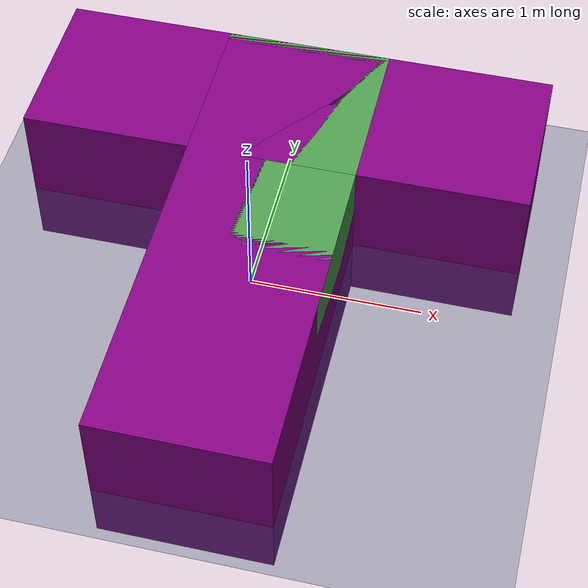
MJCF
<mujoco>
  <compiler inertiafromgeom="true" angle="radian" coordinate="local"/>
  <option timestep="0.01" gravity="0 0 0" iterations="20" integrator="Euler"/>
  <default>
    <joint damping="1" limited='false'/>
    <geom friction=".5 .1 .1" density="1000" margin="0.002" condim="1" contype="2" conaffinity="1"/>
  </default>
  <asset>
    <texture type="2d" name="groundplane" builtin="checker" rgb1="0.2 0.3 0.4" rgb2="0.1 0.2 0.3" width="100" height="100"/>
    <texture name="skybox" type="skybox" builtin="gradient" rgb1=".4 .6 .8" rgb2="0 0 0" width="800" height="800" mark="random" markrgb="1 1 1"/>
    <material name="groundplane" texture="groundplane" texrepeat="20 20"/>
    <material name="target" rgba=".6 .3 .3 1"/>
  </asset>
  <visual>
    <headlight ambient=".4 .4 .4" diffuse=".8 .8 .8" specular="0.1 0.1 0.1"/>
    <map znear=".01"/>
    <quality shadowsize="2048"/>
  </visual>
  <worldbody>
    <camera name="global_view" pos="0 0 50" xyaxes="1 0 0 0 1 0" fovy="45"/>
    <camera name="global_view2" pos="0 -15 50" xyaxes="1 0 0 0 0.9659 0.2588" fovy="45"/>
    <geom name="ground" size="40 40 0.25" pos="0 0 -0.1" type="plane" contype="1" conaffinity="0" material="groundplane"/>
    <body name="particle_1" pos="0 0 0">
      <geom name="particle_geom_1" type="box" size="0.5 0.5 0.5" rgba="0.0 0.0 1.0 0.0" friction="0.0 0.1 0.1" mass="0.01" contype="1"/>
      <site name="particle_site_1" pos="0.0 0.0 0.0" type="box" size="0.5 0.5 0.5" rgba="0.3 0.6 0.3 1"/>
      <joint name="ball_x_1" type="slide" pos="0 0 0" axis="1 0 0"/>
      <joint name="ball_y_1" type="slide" pos="0 0 0" axis="0 1 0"/>
    </body>
    <body name="particle_2" pos="0 1 0">
      <geom name="particle_geom_2" type="box" size="0.5 0.5 0.5" rgba="0.0 0.0 1.0 0.0" friction="0.0 0.1 0.1" mass="0.01" contype="1"/>
      <site name="particle_site_2" pos="0.0 0.0 0.0" type="box" size="0.5 0.5 0.5" rgba="0.3 0.6 0.3 1"/>
      <joint name="ball_x_2" type="slide" pos="0 0 0" axis="1 0 0"/>
      <joint name="ball_y_2" type="slide" pos="0 0 0" axis="0 1 0"/>
    </body>
    <body name="barrier_1" pos="0 0 0">
      <geom name="barrier_geom_1" type="box" size="0.5 1.5 0.5" rgba="0.5 0 0.5 1" friction="0.0 0.1 0.1" mass="0.01" contype="1"/>
      <site name="barrier_site_1" pos="0.0 0.0 0.0" type="box" size="0.5 1.5 0.5" rgba="0.5 0 0.5 1"/>
      <joint name="barrier_x_1" type="slide" pos="0 0 0" axis="1 0 0"/>
      <joint name="barrier_y_1" type="slide" pos="0 0 0" axis="0 1 0"/>
    </body>
    <body name="barrier_2" pos="0 1 0">
      <geom name="barrier_geom_2" type="box" size="1.5 0.5 0.5" rgba="0.5 0 0.5 1" friction="0.0 0.1 0.1" mass="0.01" contype="1"/>
      <site name="barrier_site_2" pos="0.0 0.0 0.0" type="box" size="1.5 0.5 0.5" rgba="0.5 0 0.5 1"/>
      <joint name="barrier_x_2" type="slide" pos="0 0 0" axis="1 0 0"/>
      <joint name="barrier_y_2" type="slide" pos="0 0 0" axis="0 1 0"/>
    </body>
  </worldbody>
  <actuator>
    <!-- These are just dummy actuators for providing ranges -->
    <motor name="motor_x_1" joint="ball_x_1" ctrlrange="-1.0 1.0" ctrllimited="true" gear= "100"/>
    <motor name="motor_y_1" joint="ball_y_1" ctrlrange="-1.0 1.0" ctrllimited="true" gear="100"/>
    <motor name="motor_x_2" joint="ball_x_2" ctrlrange="-1.0 1.0" ctrllimited="true" gear= "100"/>
    <motor name="motor_y_2" joint="ball_y_2" ctrlrange="-1.0 1.0" ctrllimited="true" gear="100"/>
    <motor name="motor_x_3" joint="barrier_x_1" ctrlrange="-1.0 1.0" ctrllimited="true" gear= "100"/>
    <motor name="motor_y_3" joint="barrier_y_1" ctrlrange="-1.0 1.0" ctrllimited="true" gear="100"/>
    <motor name="motor_x_4" joint="barrier_x_2" ctrlrange="-1.0 1.0" ctrllimited="true" gear= "100"/>
    <motor name="motor_y_4" joint="barrier_y_2" ctrlrange="-1.0 1.0" ctrllimited="true" gear="100"/>
  </actuator>
</mujoco>
